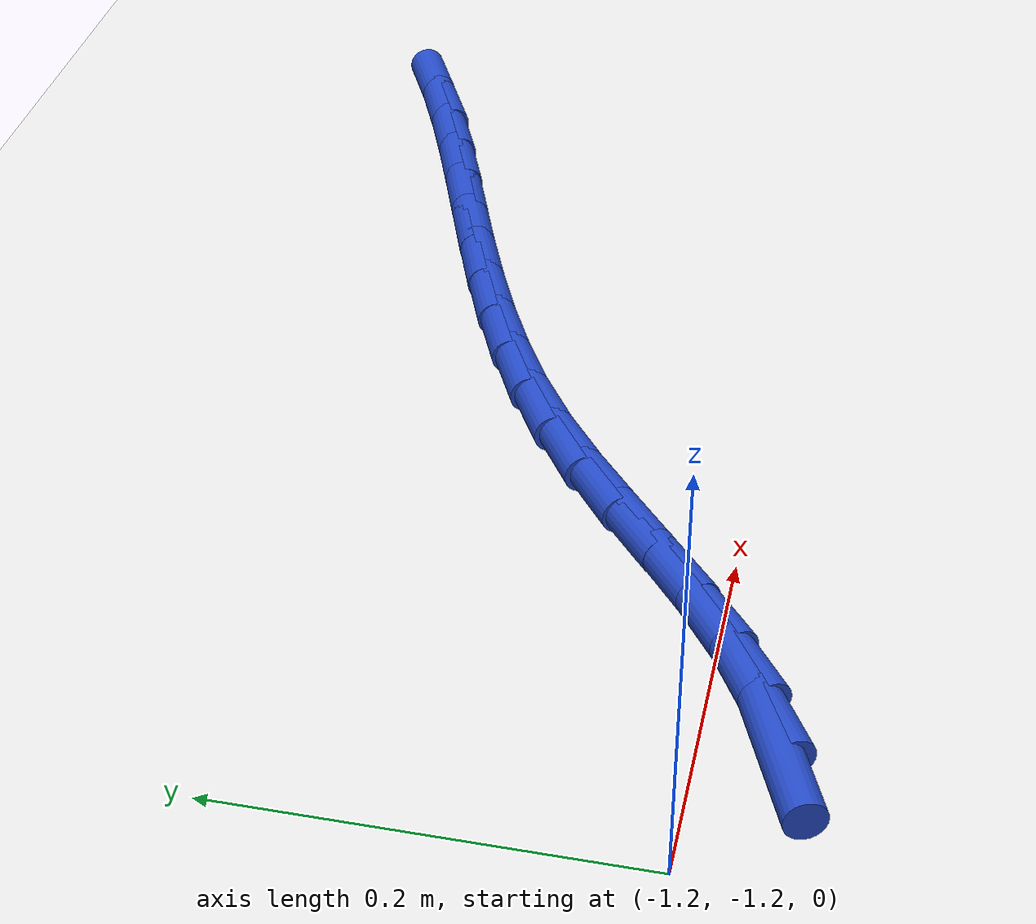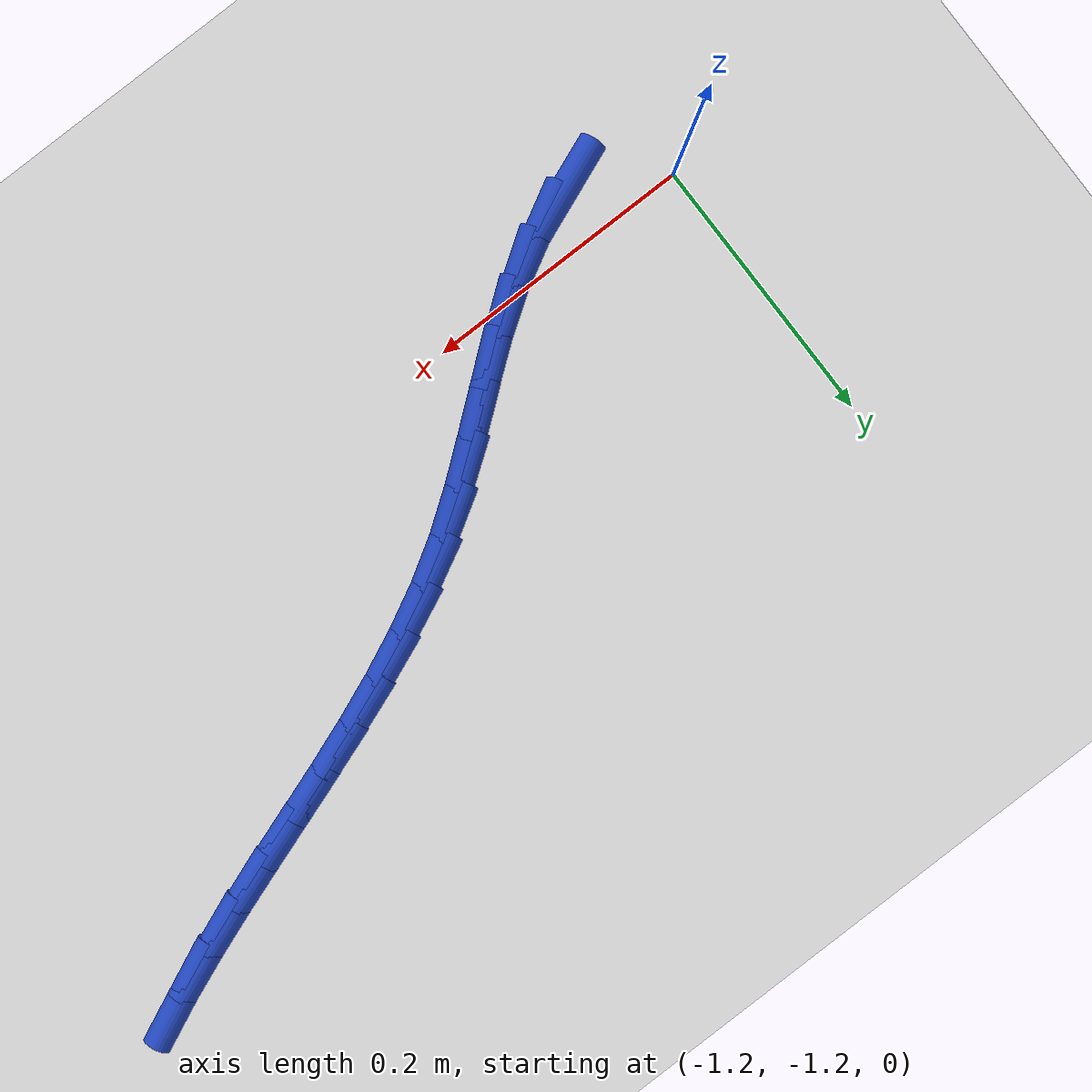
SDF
<sdf version="1.6">
 <world name="default">
  <model name="ground_plane">
   <static>1</static>
   <link name="link">
    <collision name="collision">
     <geometry><plane><normal>0 0 1</normal><size>100 100</size></plane></geometry>
     <surface><friction><ode><mu>100</mu><mu2>50</mu2></ode></friction></surface>
    </collision>
    <visual name="visual">
     <cast_shadows>0</cast_shadows>
     <geometry><plane><normal>0 0 1</normal><size>100 100</size></plane></geometry>
     <material>
      <script><uri>file://media/materials/scripts/gazebo.material</uri><name>Gazebo/WhiteGlow</name></script>
     </material>
    </visual>
   </link>
  </model>
  <model name="line">
   <link name="link_170">
    <pose>-1.1312818536435676 -1.2357910882118255 0.01 0 1.57 0.3757322313338165</pose>
    <collision name="collision">
     <geometry><cylinder><radius>0.01</radius><length>0.08</length></cylinder></geometry>
    </collision>
    <visual name="visual">
     <material>
      <script><name>Gazebo/Blue</name><uri>file://media/materials/scripts/gazebo.material</uri></script>
     </material>
     <geometry><cylinder><radius>0.01</radius><length>0.08</length></cylinder></geometry>
    </visual>
   </link>
   <link name="link_171">
    <pose>-1.0980246688463784 -1.2226720432312812 0.01 0 1.57 0.5002544703175881</pose>
    <collision name="collision">
     <geometry><cylinder><radius>0.01</radius><length>0.08</length></cylinder></geometry>
    </collision>
    <visual name="visual">
     <material>
      <script><name>Gazebo/Blue</name><uri>file://media/materials/scripts/gazebo.material</uri></script>
     </material>
     <geometry><cylinder><radius>0.01</radius><length>0.08</length></cylinder></geometry>
    </visual>
   </link>
   <link name="link_172">
    <pose>-1.0668842362553765 -1.2056496566418196 0.01 0 1.57 0.5919458460226962</pose>
    <collision name="collision">
     <geometry><cylinder><radius>0.01</radius><length>0.08</length></cylinder></geometry>
    </collision>
    <visual name="visual">
     <material>
      <script><name>Gazebo/Blue</name><uri>file://media/materials/scripts/gazebo.material</uri></script>
     </material>
     <geometry><cylinder><radius>0.01</radius><length>0.08</length></cylinder></geometry>
    </visual>
   </link>
   <link name="link_173">
    <pose>-1.0373081579014416 -1.1857633669071066 0.01 0 1.57 0.6488963881998021</pose>
    <collision name="collision">
     <geometry><cylinder><radius>0.01</radius><length>0.08</length></cylinder></geometry>
    </collision>
    <visual name="visual">
     <material>
      <script><name>Gazebo/Blue</name><uri>file://media/materials/scripts/gazebo.material</uri></script>
     </material>
     <geometry><cylinder><radius>0.01</radius><length>0.08</length></cylinder></geometry>
    </visual>
   </link>
   <link name="link_174">
    <pose>-1.0087166677571633 -1.1640777378517813 0.01 0 1.57 0.6719456013744582</pose>
    <collision name="collision">
     <geometry><cylinder><radius>0.01</radius><length>0.08</length></cylinder></geometry>
    </collision>
    <visual name="visual">
     <material>
      <script><name>Gazebo/Blue</name><uri>file://media/materials/scripts/gazebo.material</uri></script>
     </material>
     <geometry><cylinder><radius>0.01</radius><length>0.08</length></cylinder></geometry>
    </visual>
   </link>
   <link name="link_175">
    <pose>-0.9805299997951276 -1.1416573333004796 0.01 0 1.57 0.6617366820523481</pose>
    <collision name="collision">
     <geometry><cylinder><radius>0.01</radius><length>0.08</length></cylinder></geometry>
    </collision>
    <visual name="visual">
     <material>
      <script><name>Gazebo/Blue</name><uri>file://media/materials/scripts/gazebo.material</uri></script>
     </material>
     <geometry><cylinder><radius>0.01</radius><length>0.08</length></cylinder></geometry>
    </visual>
   </link>
   <link name="link_176">
    <pose>-0.952168387987923 -1.119566717077839 0.01 0 1.57 0.6179463697596184</pose>
    <collision name="collision">
     <geometry><cylinder><radius>0.01</radius><length>0.08</length></cylinder></geometry>
    </collision>
    <visual name="visual">
     <material>
      <script><name>Gazebo/Blue</name><uri>file://media/materials/scripts/gazebo.material</uri></script>
     </material>
     <geometry><cylinder><radius>0.01</radius><length>0.08</length></cylinder></geometry>
    </visual>
   </link>
   <link name="link_177">
    <pose>-0.9230520674951386 -1.0988704508222553 0.01 0 1.57 0.5477868670889392</pose>
    <collision name="collision">
     <geometry><cylinder><radius>0.01</radius><length>0.08</length></cylinder></geometry>
    </collision>
    <visual name="visual">
     <material>
      <script><name>Gazebo/Blue</name><uri>file://media/materials/scripts/gazebo.material</uri></script>
     </material>
     <geometry><cylinder><radius>0.01</radius><length>0.08</length></cylinder></geometry>
    </visual>
   </link>
   <link name="link_178">
    <pose>-0.8927397741953659 -1.080378003151742 0.01 0 1.57 0.4818808388616608</pose>
    <collision name="collision">
     <geometry><cylinder><radius>0.01</radius><length>0.08</length></cylinder></geometry>
    </collision>
    <visual name="visual">
     <material>
      <script><name>Gazebo/Blue</name><uri>file://media/materials/scripts/gazebo.material</uri></script>
     </material>
     <geometry><cylinder><radius>0.01</radius><length>0.08</length></cylinder></geometry>
    </visual>
   </link>
   <link name="link_179">
    <pose>-0.8613106069481742 -1.0639404291434469 0.01 0 1.57 0.4280237376626739</pose>
    <collision name="collision">
     <geometry><cylinder><radius>0.01</radius><length>0.08</length></cylinder></geometry>
    </collision>
    <visual name="visual">
     <material>
      <script><name>Gazebo/Blue</name><uri>file://media/materials/scripts/gazebo.material</uri></script>
     </material>
     <geometry><cylinder><radius>0.01</radius><length>0.08</length></cylinder></geometry>
    </visual>
   </link>
   <link name="link_180">
    <pose>-0.8289658502073666 -1.0491837403331865 0.01 0 1.57 0.3863901118649563</pose>
    <collision name="collision">
     <geometry><cylinder><radius>0.01</radius><length>0.08</length></cylinder></geometry>
    </collision>
    <visual name="visual">
     <material>
      <script><name>Gazebo/Blue</name><uri>file://media/materials/scripts/gazebo.material</uri></script>
     </material>
     <geometry><cylinder><radius>0.01</radius><length>0.08</length></cylinder></geometry>
    </visual>
   </link>
   <link name="link_181">
    <pose>-0.7959067884267473 -1.0357339482567782 0.01 0 1.57 0.3568721923233634</pose>
    <collision name="collision">
     <geometry><cylinder><radius>0.01</radius><length>0.08</length></cylinder></geometry>
    </collision>
    <visual name="visual">
     <material>
      <script><name>Gazebo/Blue</name><uri>file://media/materials/scripts/gazebo.material</uri></script>
     </material>
     <geometry><cylinder><radius>0.01</radius><length>0.08</length></cylinder></geometry>
    </visual>
   </link>
   <link name="link_182">
    <pose>-0.7623347060601192 -1.0232170644500393 0.01 0 1.57 0.3392655633422309</pose>
    <collision name="collision">
     <geometry><cylinder><radius>0.01</radius><length>0.08</length></cylinder></geometry>
    </collision>
    <visual name="visual">
     <material>
      <script><name>Gazebo/Blue</name><uri>file://media/materials/scripts/gazebo.material</uri></script>
     </material>
     <geometry><cylinder><radius>0.01</radius><length>0.08</length></cylinder></geometry>
    </visual>
   </link>
   <link name="link_183">
    <pose>-0.728450887561288 -1.0112591004487872 0.01 0 1.57 0.33339626746675965</pose>
    <collision name="collision">
     <geometry><cylinder><radius>0.01</radius><length>0.08</length></cylinder></geometry>
    </collision>
    <visual name="visual">
     <material>
      <script><name>Gazebo/Blue</name><uri>file://media/materials/scripts/gazebo.material</uri></script>
     </material>
     <geometry><cylinder><radius>0.01</radius><length>0.08</length></cylinder></geometry>
    </visual>
   </link>
   <link name="link_184">
    <pose>-0.6944566173840568 -0.9994860677888394 0.01 0 1.57 0.33919217472002716</pose>
    <collision name="collision">
     <geometry><cylinder><radius>0.01</radius><length>0.08</length></cylinder></geometry>
    </collision>
    <visual name="visual">
     <material>
      <script><name>Gazebo/Blue</name><uri>file://media/materials/scripts/gazebo.material</uri></script>
     </material>
     <geometry><cylinder><radius>0.01</radius><length>0.08</length></cylinder></geometry>
    </visual>
   </link>
   <link name="link_185">
    <pose>-0.6605531799822298 -0.9875239780060128 0.01 0 1.57 0.35670559053500744</pose>
    <collision name="collision">
     <geometry><cylinder><radius>0.01</radius><length>0.08</length></cylinder></geometry>
    </collision>
    <visual name="visual">
     <material>
      <script><name>Gazebo/Blue</name><uri>file://media/materials/scripts/gazebo.material</uri></script>
     </material>
     <geometry><cylinder><radius>0.01</radius><length>0.08</length></cylinder></geometry>
    </visual>
   </link>
   <link name="link_186">
    <pose>-0.6269418598096103 -0.9749988426361245 0.01 0 1.57 0.3860903831418399</pose>
    <collision name="collision">
     <geometry><cylinder><radius>0.01</radius><length>0.08</length></cylinder></geometry>
    </collision>
    <visual name="visual">
     <material>
      <script><name>Gazebo/Blue</name><uri>file://media/materials/scripts/gazebo.material</uri></script>
     </material>
     <geometry><cylinder><radius>0.01</radius><length>0.08</length></cylinder></geometry>
    </visual>
   </link>
   <link name="link_187">
    <pose>-0.5938239413200039 -0.9615366732149925 0.01 0 1.57 0.4275309309768192</pose>
    <collision name="collision">
     <geometry><cylinder><radius>0.01</radius><length>0.08</length></cylinder></geometry>
    </collision>
    <visual name="visual">
     <material>
      <script><name>Gazebo/Blue</name><uri>file://media/materials/scripts/gazebo.material</uri></script>
     </material>
     <geometry><cylinder><radius>0.01</radius><length>0.08</length></cylinder></geometry>
    </visual>
   </link>
  </model>
 </world>
</sdf>
